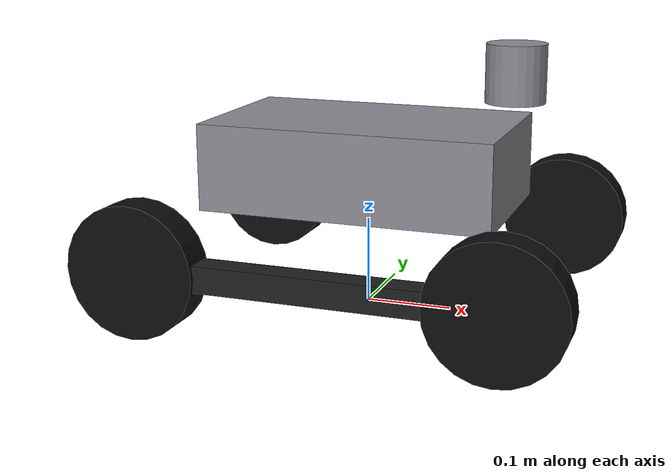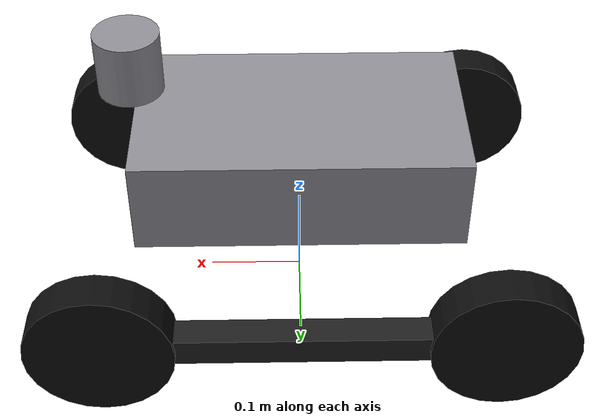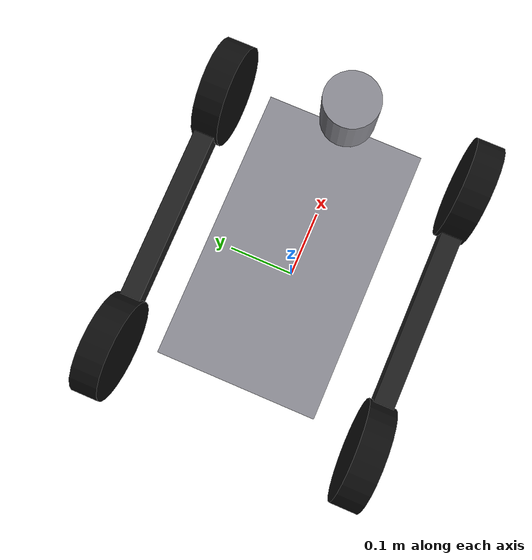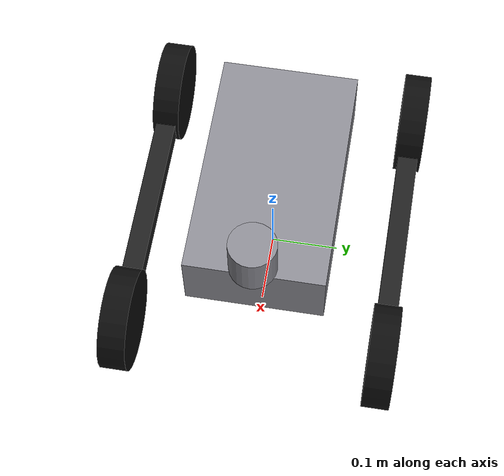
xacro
<?xml version="1.0"?>
<robot name="rover" xmlns:xacro="http://www.ros.org/wiki/xacro">

  <!-- ============================================================
       Launch-time args
       ============================================================ -->
  <xacro:arg name="can_interface" default="can0"/>

  <!-- enclosure / main body -->
  <xacro:property name="chassis_length" value="0.34"/>
  <xacro:property name="chassis_width"  value="0.20"/>
  <xacro:property name="chassis_height" value="0.10"/>

  <!-- wheels -->
  <xacro:property name="wheel_radius"   value="0.075"/>  <!-- 15 cm diameter -->
  <xacro:property name="wheel_width"    value="0.04"/>   <!-- ASSUMED: not given -->

  <!-- layout -->
  <xacro:property name="track_width"    value="0.38"/>   <!-- left/right wheel-center distance -->
  <xacro:property name="wheelbase"      value="0.40"/>   <!-- front/rear wheel-center distance -->

  <!-- side rails (the metal links carrying the 4 motors) -->
  <xacro:property name="rail_length"    value="0.50"/>
  <xacro:property name="rail_width"     value="0.03"/>   <!-- ASSUMED cross-section: not given -->
  <xacro:property name="rail_height"    value="0.03"/>   <!-- ASSUMED cross-section: not given -->

  <xacro:property name="ground_to_axle_height"      value="${wheel_radius}"/>
  <xacro:property name="enclosure_top_to_ground"     value="0.22"/>
  <xacro:property name="enclosure_bottom_to_ground"  value="${enclosure_top_to_ground - chassis_height}"/>
  <xacro:property name="axle_to_chassis_bottom"      value="${enclosure_bottom_to_ground - ground_to_axle_height}"/>

  <xacro:property name="lidar_z_above_chassis_top" value="0.06"/>

  <!-- Rough Mid-360 housing dimensions, for the rviz visual only -
       does not affect the mount joint's origin/collision behavior. -->
  <xacro:property name="lidar_visual_radius" value="0.0335"/>
  <xacro:property name="lidar_visual_height" value="0.065"/>

  <xacro:include filename="$(find robot_description)/urdf/rover.materials.xacro"/>
  <xacro:include filename="$(find robot_description)/urdf/rover.ros2_control.xacro"/>

  <!-- ============================================================
       base_footprint (ground projection) -> base_link (axle height)
       ============================================================ -->
  <link name="base_footprint"/>

  <joint name="base_footprint_joint" type="fixed">
    <parent link="base_footprint"/>
    <child link="base_link"/>
    <origin xyz="0 0 ${ground_to_axle_height}" rpy="0 0 0"/>
  </joint>

  <link name="base_link"/>

  <!-- ============================================================
       Chassis / enclosure
       ============================================================ -->
  <joint name="chassis_joint" type="fixed">
    <parent link="base_link"/>
    <child link="chassis_link"/>
    <origin xyz="0 0 ${axle_to_chassis_bottom + chassis_height/2}" rpy="0 0 0"/>
  </joint>

  <link name="chassis_link">
    <visual>
      <geometry><box size="${chassis_length} ${chassis_width} ${chassis_height}"/></geometry>
      <material name="chassis_grey"/>
    </visual>
    <collision>
      <geometry><box size="${chassis_length} ${chassis_width} ${chassis_height}"/></geometry>
    </collision>
    <inertial>
      <!-- ASSUMED mass/inertia placeholder - refine once you know real payload mass -->
      <mass value="6.0"/>
      <origin xyz="0 0 0"/>
      <inertia ixx="0.050" ixy="0" ixz="0" iyy="0.080" iyz="0" izz="0.090"/>
    </inertial>
  </link>

  <!-- ============================================================
       Side rails (metal links housing 2 motors each)
       ============================================================ -->
  <xacro:macro name="rail" params="prefix y_offset">
    <joint name="${prefix}_rail_joint" type="fixed">
      <parent link="base_link"/>
      <child link="${prefix}_rail_link"/>
      <origin xyz="0 ${y_offset} 0" rpy="0 0 0"/>
    </joint>
    <link name="${prefix}_rail_link">
      <visual>
        <geometry><box size="${rail_length} ${rail_width} ${rail_height}"/></geometry>
        <material name="rail_dark"/>
      </visual>
      <collision>
        <geometry><box size="${rail_length} ${rail_width} ${rail_height}"/></geometry>
      </collision>
      <inertial>
        <mass value="0.5"/>
        <origin xyz="0 0 0"/>
        <inertia ixx="0.001" ixy="0" ixz="0" iyy="0.010" iyz="0" izz="0.010"/>
      </inertial>
    </link>
  </xacro:macro>

  <xacro:rail prefix="left"  y_offset="${track_width/2}"/>
  <xacro:rail prefix="right" y_offset="${-track_width/2}"/>

  <!-- ============================================================
       Wheels - continuous joints, spin axis = local Y (REP-103)
       ============================================================ -->
  <xacro:macro name="wheel" params="prefix x_offset y_offset">
    <joint name="${prefix}_wheel_joint" type="continuous">
      <parent link="base_link"/>
      <child link="${prefix}_wheel_link"/>
      <origin xyz="${x_offset} ${y_offset} 0" rpy="0 0 0"/>
      <axis xyz="0 1 0"/>
      <dynamics damping="0.1" friction="0.05"/>
    </joint>
    <link name="${prefix}_wheel_link">
      <visual>
        <origin xyz="0 0 0" rpy="${pi/2} 0 0"/>
        <geometry><cylinder radius="${wheel_radius}" length="${wheel_width}"/></geometry>
        <material name="wheel_black"/>
      </visual>
      <collision>
        <origin xyz="0 0 0" rpy="${pi/2} 0 0"/>
        <geometry><cylinder radius="${wheel_radius}" length="${wheel_width}"/></geometry>
      </collision>
      <inertial>
        <mass value="0.8"/>
        <origin xyz="0 0 0"/>
        <inertia ixx="0.0010" ixy="0" ixz="0" iyy="0.0010" iyz="0" izz="0.0010"/>
      </inertial>
    </link>
  </xacro:macro>

  <xacro:wheel prefix="front_left"  x_offset="${wheelbase/2}"  y_offset="${track_width/2}"/>
  <xacro:wheel prefix="front_right" x_offset="${wheelbase/2}"  y_offset="${-track_width/2}"/>
  <xacro:wheel prefix="rear_left"   x_offset="${-wheelbase/2}" y_offset="${track_width/2}"/>
  <xacro:wheel prefix="rear_right"  x_offset="${-wheelbase/2}" y_offset="${-track_width/2}"/>

  <joint name="livox_joint" type="fixed">
    <parent link="base_link"/>
    <child link="livox_frame"/>
    <origin xyz="${chassis_length/2} 0 ${axle_to_chassis_bottom + chassis_height + lidar_z_above_chassis_top}"
            rpy="0 0 0"/>
  </joint>

  <link name="livox_frame">
    <visual>
      <origin xyz="0 0 0" rpy="0 0 0"/>
      <geometry><cylinder radius="${lidar_visual_radius}" length="${lidar_visual_height}"/></geometry>
      <material name="chassis_grey"/>
    </visual>
    <collision>
      <origin xyz="0 0 0" rpy="0 0 0"/>
      <geometry><cylinder radius="${lidar_visual_radius}" length="${lidar_visual_height}"/></geometry>
    </collision>
    <inertial>
      <!-- ASSUMED - Mid-360 is ~265 g, negligible for the rover but included for completeness -->
      <mass value="0.265"/>
      <origin xyz="0 0 0"/>
      <inertia ixx="0.0002" ixy="0" ixz="0" iyy="0.0002" iyz="0" izz="0.0002"/>
    </inertial>
  </link>

  <xacro:rover_ros2_control can_interface="$(arg can_interface)"/>

</robot>

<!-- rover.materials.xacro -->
<robot xmlns:xacro="http://www.ros.org/wiki/xacro">

  <material name="chassis_grey">
    <color rgba="0.55 0.55 0.58 1.0"/>
  </material>

  <material name="rail_dark">
    <color rgba="0.12 0.12 0.12 1.0"/>
  </material>

  <material name="wheel_black">
    <color rgba="0.05 0.05 0.05 1.0"/>
  </material>

</robot>
